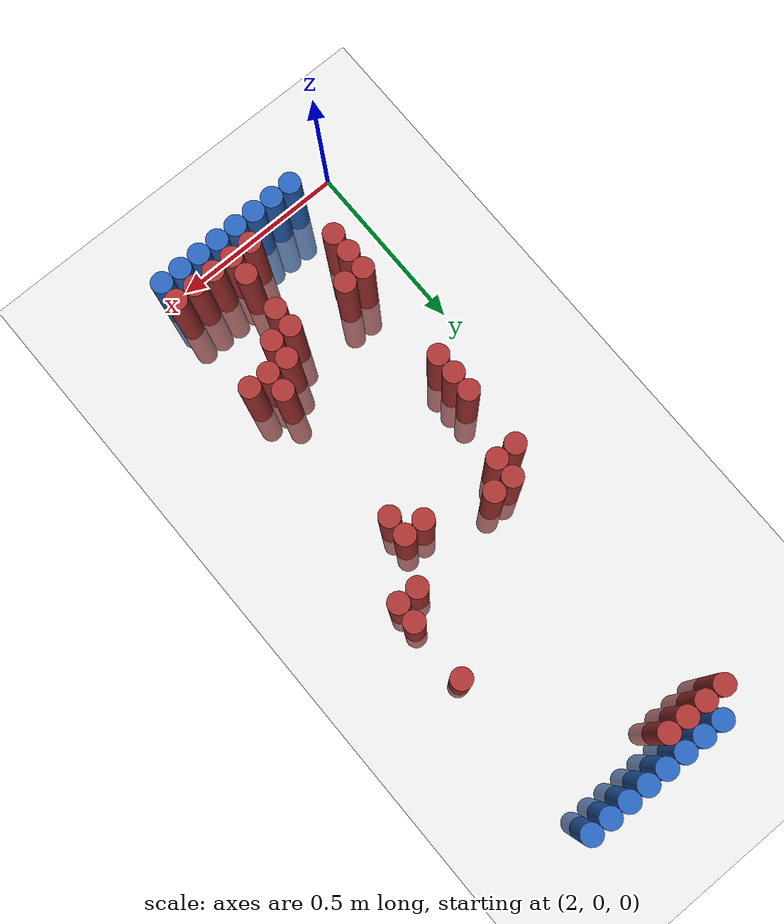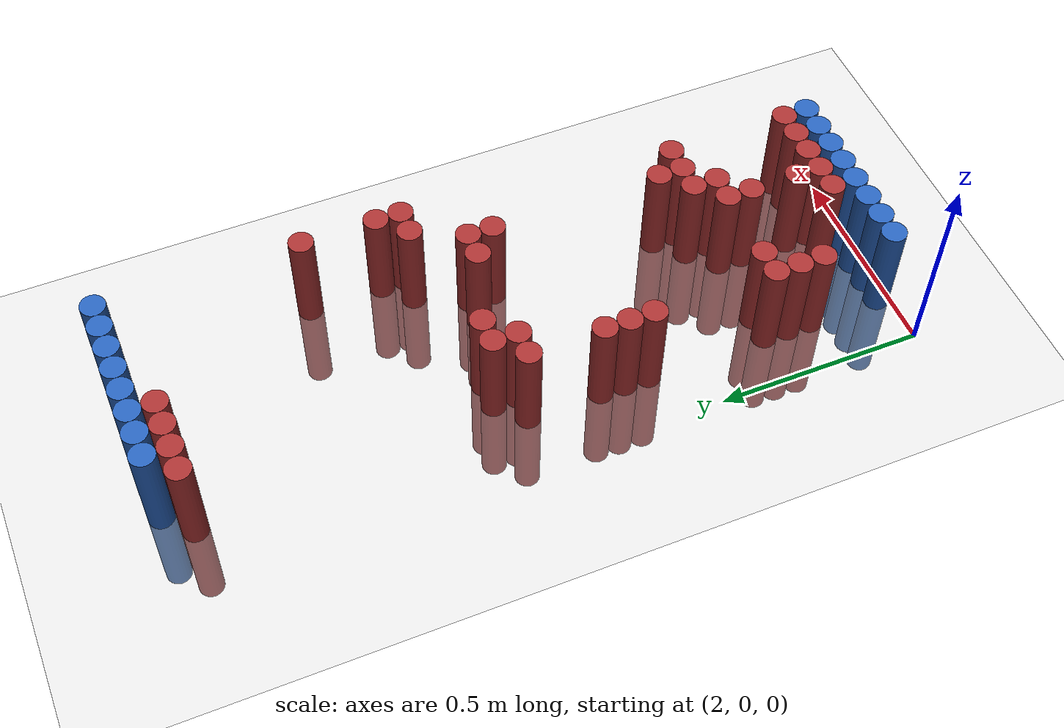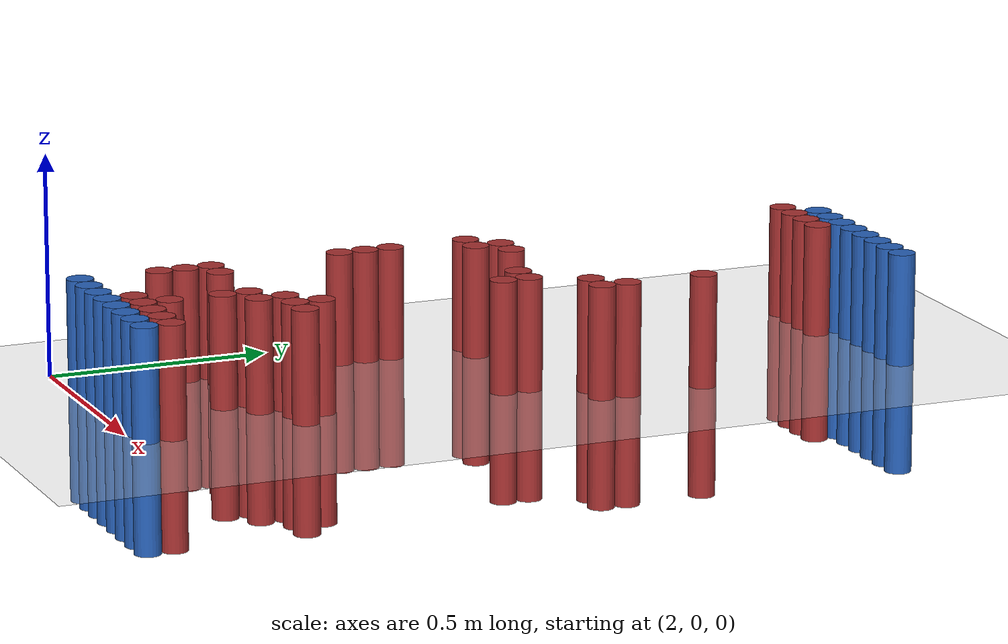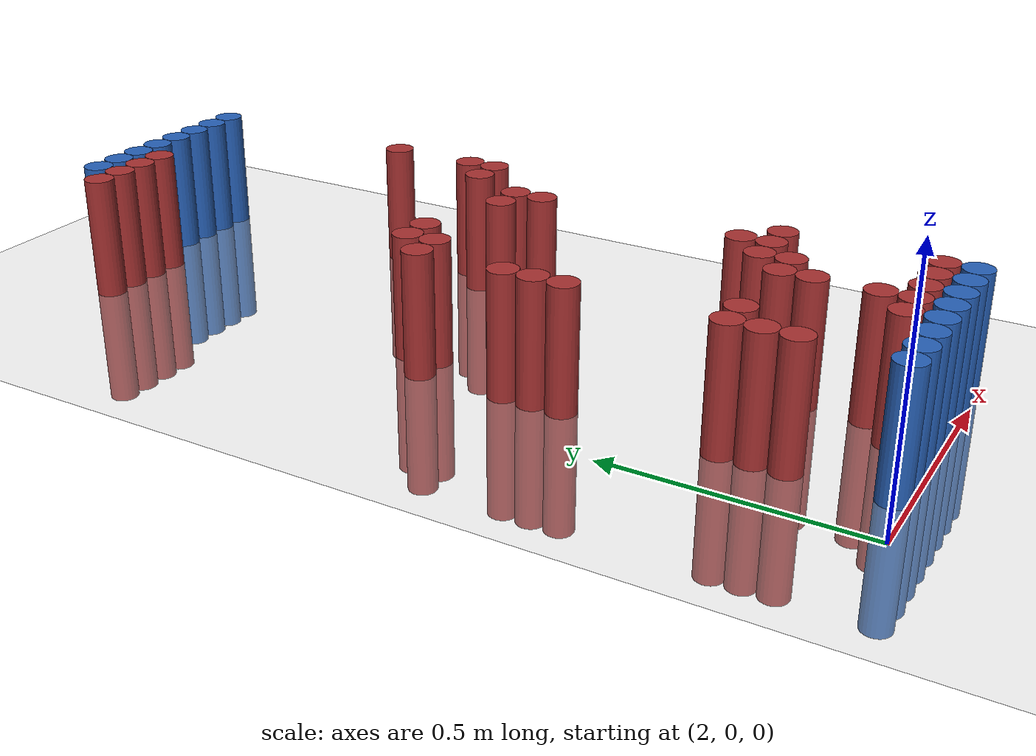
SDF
<sdf version="1.6">
 <world name="default">
  <model name="ground_plane">
   <static>1</static>
   <link name="link">
    <collision name="collision">
     <geometry><plane><normal>0 0 1</normal><size>100 100</size></plane></geometry>
     <surface><friction><ode><mu>100</mu><mu2>50</mu2></ode></friction></surface>
    </collision>
    <visual name="visual">
     <cast_shadows>0</cast_shadows>
     <geometry><plane><normal>0 0 1</normal><size>100 100</size></plane></geometry>
     <material>
      <script><uri>file://media/materials/scripts/gazebo.material</uri><name>Gazebo/Grey</name></script>
     </material>
    </visual>
   </link>
  </model>
  <model name="unit_cylinder_97">
   <static>1</static>
   <pose>2.190000 1.770000 0.000000 0.000000 0.000000 0.000000</pose>
   <link name="link">
    <inertial>
     <mass>1</mass>
     <inertia><ixx>0.145833</ixx><ixy>0</ixy><ixz>0</ixz><iyy>0.145833</iyy><iyz>0</iyz><izz>0.125</izz></inertia>
    </inertial>
    <collision name="collision">
     <geometry><cylinder><radius>0.030000</radius><length>0.5</length></cylinder></geometry>
    </collision>
    <visual name="visual">
     <geometry><cylinder><radius>0.030000</radius><length>0.5</length></cylinder></geometry>
     <material>
      <ambient>0.152000 0.379000 0.720000 1</ambient>
      <diffuse>0.152000 0.379000 0.720000 1</diffuse>
     </material>
     <material>
      <script><name>Gazebo/Grey</name><uri>file://media/materials/scripts/gazebo.material</uri></script>
     </material>
    </visual>
   </link>
  </model>
  <model name="unit_cylinder_98">
   <static>1</static>
   <pose>2.250000 1.770000 0.000000 0.000000 0.000000 0.000000</pose>
   <link name="link">
    <inertial>
     <mass>1</mass>
     <inertia><ixx>0.145833</ixx><ixy>0</ixy><ixz>0</ixz><iyy>0.145833</iyy><iyz>0</iyz><izz>0.125</izz></inertia>
    </inertial>
    <collision name="collision">
     <geometry><cylinder><radius>0.030000</radius><length>0.5</length></cylinder></geometry>
    </collision>
    <visual name="visual">
     <geometry><cylinder><radius>0.030000</radius><length>0.5</length></cylinder></geometry>
     <material>
      <ambient>0.152000 0.379000 0.720000 1</ambient>
      <diffuse>0.152000 0.379000 0.720000 1</diffuse>
     </material>
     <material>
      <script><name>Gazebo/Grey</name><uri>file://media/materials/scripts/gazebo.material</uri></script>
     </material>
    </visual>
   </link>
  </model>
  <model name="unit_cylinder_99">
   <static>1</static>
   <pose>2.310000 1.770000 0.000000 0.000000 0.000000 0.000000</pose>
   <link name="link">
    <inertial>
     <mass>1</mass>
     <inertia><ixx>0.145833</ixx><ixy>0</ixy><ixz>0</ixz><iyy>0.145833</iyy><iyz>0</iyz><izz>0.125</izz></inertia>
    </inertial>
    <collision name="collision">
     <geometry><cylinder><radius>0.030000</radius><length>0.5</length></cylinder></geometry>
    </collision>
    <visual name="visual">
     <geometry><cylinder><radius>0.030000</radius><length>0.5</length></cylinder></geometry>
     <material>
      <ambient>0.152000 0.379000 0.720000 1</ambient>
      <diffuse>0.152000 0.379000 0.720000 1</diffuse>
     </material>
     <material>
      <script><name>Gazebo/Grey</name><uri>file://media/materials/scripts/gazebo.material</uri></script>
     </material>
    </visual>
   </link>
  </model>
  <model name="unit_cylinder_100">
   <static>1</static>
   <pose>2.370000 1.770000 0.000000 0.000000 0.000000 0.000000</pose>
   <link name="link">
    <inertial>
     <mass>1</mass>
     <inertia><ixx>0.145833</ixx><ixy>0</ixy><ixz>0</ixz><iyy>0.145833</iyy><iyz>0</iyz><izz>0.125</izz></inertia>
    </inertial>
    <collision name="collision">
     <geometry><cylinder><radius>0.030000</radius><length>0.5</length></cylinder></geometry>
    </collision>
    <visual name="visual">
     <geometry><cylinder><radius>0.030000</radius><length>0.5</length></cylinder></geometry>
     <material>
      <ambient>0.152000 0.379000 0.720000 1</ambient>
      <diffuse>0.152000 0.379000 0.720000 1</diffuse>
     </material>
     <material>
      <script><name>Gazebo/Grey</name><uri>file://media/materials/scripts/gazebo.material</uri></script>
     </material>
    </visual>
   </link>
  </model>
  <model name="unit_cylinder_101">
   <static>1</static>
   <pose>2.430000 1.770000 0.000000 0.000000 0.000000 0.000000</pose>
   <link name="link">
    <inertial>
     <mass>1</mass>
     <inertia><ixx>0.145833</ixx><ixy>0</ixy><ixz>0</ixz><iyy>0.145833</iyy><iyz>0</iyz><izz>0.125</izz></inertia>
    </inertial>
    <collision name="collision">
     <geometry><cylinder><radius>0.030000</radius><length>0.5</length></cylinder></geometry>
    </collision>
    <visual name="visual">
     <geometry><cylinder><radius>0.030000</radius><length>0.5</length></cylinder></geometry>
     <material>
      <ambient>0.152000 0.379000 0.720000 1</ambient>
      <diffuse>0.152000 0.379000 0.720000 1</diffuse>
     </material>
     <material>
      <script><name>Gazebo/Grey</name><uri>file://media/materials/scripts/gazebo.material</uri></script>
     </material>
    </visual>
   </link>
  </model>
  <model name="unit_cylinder_102">
   <static>1</static>
   <pose>2.490000 1.770000 0.000000 0.000000 0.000000 0.000000</pose>
   <link name="link">
    <inertial>
     <mass>1</mass>
     <inertia><ixx>0.145833</ixx><ixy>0</ixy><ixz>0</ixz><iyy>0.145833</iyy><iyz>0</iyz><izz>0.125</izz></inertia>
    </inertial>
    <collision name="collision">
     <geometry><cylinder><radius>0.030000</radius><length>0.5</length></cylinder></geometry>
    </collision>
    <visual name="visual">
     <geometry><cylinder><radius>0.030000</radius><length>0.5</length></cylinder></geometry>
     <material>
      <ambient>0.152000 0.379000 0.720000 1</ambient>
      <diffuse>0.152000 0.379000 0.720000 1</diffuse>
     </material>
     <material>
      <script><name>Gazebo/Grey</name><uri>file://media/materials/scripts/gazebo.material</uri></script>
     </material>
    </visual>
   </link>
  </model>
  <model name="unit_cylinder_103">
   <static>1</static>
   <pose>2.550000 1.770000 0.000000 0.000000 0.000000 0.000000</pose>
   <link name="link">
    <inertial>
     <mass>1</mass>
     <inertia><ixx>0.145833</ixx><ixy>0</ixy><ixz>0</ixz><iyy>0.145833</iyy><iyz>0</iyz><izz>0.125</izz></inertia>
    </inertial>
    <collision name="collision">
     <geometry><cylinder><radius>0.030000</radius><length>0.5</length></cylinder></geometry>
    </collision>
    <visual name="visual">
     <geometry><cylinder><radius>0.030000</radius><length>0.5</length></cylinder></geometry>
     <material>
      <ambient>0.152000 0.379000 0.720000 1</ambient>
      <diffuse>0.152000 0.379000 0.720000 1</diffuse>
     </material>
     <material>
      <script><name>Gazebo/Grey</name><uri>file://media/materials/scripts/gazebo.material</uri></script>
     </material>
    </visual>
   </link>
  </model>
  <model name="unit_cylinder_104">
   <static>1</static>
   <pose>2.610000 1.770000 0.000000 0.000000 0.000000 0.000000</pose>
   <link name="link">
    <inertial>
     <mass>1</mass>
     <inertia><ixx>0.145833</ixx><ixy>0</ixy><ixz>0</ixz><iyy>0.145833</iyy><iyz>0</iyz><izz>0.125</izz></inertia>
    </inertial>
    <collision name="collision">
     <geometry><cylinder><radius>0.030000</radius><length>0.5</length></cylinder></geometry>
    </collision>
    <visual name="visual">
     <geometry><cylinder><radius>0.030000</radius><length>0.5</length></cylinder></geometry>
     <material>
      <ambient>0.152000 0.379000 0.720000 1</ambient>
      <diffuse>0.152000 0.379000 0.720000 1</diffuse>
     </material>
     <material>
      <script><name>Gazebo/Grey</name><uri>file://media/materials/scripts/gazebo.material</uri></script>
     </material>
    </visual>
   </link>
  </model>
  <model name="unit_cylinder_125">
   <static>1</static>
   <pose>2.130000 1.710000 0.000000 0.000000 0.000000 0.000000</pose>
   <link name="link">
    <inertial>
     <mass>1</mass>
     <inertia><ixx>0.145833</ixx><ixy>0</ixy><ixz>0</ixz><iyy>0.145833</iyy><iyz>0</iyz><izz>0.125</izz></inertia>
    </inertial>
    <collision name="collision">
     <geometry><cylinder><radius>0.030000</radius><length>0.5</length></cylinder></geometry>
    </collision>
    <visual name="visual">
     <geometry><cylinder><radius>0.030000</radius><length>0.5</length></cylinder></geometry>
     <material>
      <ambient>0.648000 0.192000 0.192000 1</ambient>
      <diffuse>0.648000 0.192000 0.192000 1</diffuse>
     </material>
     <material>
      <script><name>Gazebo/Grey</name><uri>file://media/materials/scripts/gazebo.material</uri></script>
     </material>
    </visual>
   </link>
  </model>
  <model name="unit_cylinder_126">
   <static>1</static>
   <pose>2.190000 1.710000 0.000000 0.000000 0.000000 0.000000</pose>
   <link name="link">
    <inertial>
     <mass>1</mass>
     <inertia><ixx>0.145833</ixx><ixy>0</ixy><ixz>0</ixz><iyy>0.145833</iyy><iyz>0</iyz><izz>0.125</izz></inertia>
    </inertial>
    <collision name="collision">
     <geometry><cylinder><radius>0.030000</radius><length>0.5</length></cylinder></geometry>
    </collision>
    <visual name="visual">
     <geometry><cylinder><radius>0.030000</radius><length>0.5</length></cylinder></geometry>
     <material>
      <ambient>0.648000 0.192000 0.192000 1</ambient>
      <diffuse>0.648000 0.192000 0.192000 1</diffuse>
     </material>
     <material>
      <script><name>Gazebo/Grey</name><uri>file://media/materials/scripts/gazebo.material</uri></script>
     </material>
    </visual>
   </link>
  </model>
  <model name="unit_cylinder_127">
   <static>1</static>
   <pose>2.250000 1.710000 0.000000 0.000000 0.000000 0.000000</pose>
   <link name="link">
    <inertial>
     <mass>1</mass>
     <inertia><ixx>0.145833</ixx><ixy>0</ixy><ixz>0</ixz><iyy>0.145833</iyy><iyz>0</iyz><izz>0.125</izz></inertia>
    </inertial>
    <collision name="collision">
     <geometry><cylinder><radius>0.030000</radius><length>0.5</length></cylinder></geometry>
    </collision>
    <visual name="visual">
     <geometry><cylinder><radius>0.030000</radius><length>0.5</length></cylinder></geometry>
     <material>
      <ambient>0.648000 0.192000 0.192000 1</ambient>
      <diffuse>0.648000 0.192000 0.192000 1</diffuse>
     </material>
     <material>
      <script><name>Gazebo/Grey</name><uri>file://media/materials/scripts/gazebo.material</uri></script>
     </material>
    </visual>
   </link>
  </model>
  <model name="unit_cylinder_128">
   <static>1</static>
   <pose>2.310000 1.710000 0.000000 0.000000 0.000000 0.000000</pose>
   <link name="link">
    <inertial>
     <mass>1</mass>
     <inertia><ixx>0.145833</ixx><ixy>0</ixy><ixz>0</ixz><iyy>0.145833</iyy><iyz>0</iyz><izz>0.125</izz></inertia>
    </inertial>
    <collision name="collision">
     <geometry><cylinder><radius>0.030000</radius><length>0.5</length></cylinder></geometry>
    </collision>
    <visual name="visual">
     <geometry><cylinder><radius>0.030000</radius><length>0.5</length></cylinder></geometry>
     <material>
      <ambient>0.648000 0.192000 0.192000 1</ambient>
      <diffuse>0.648000 0.192000 0.192000 1</diffuse>
     </material>
     <material>
      <script><name>Gazebo/Grey</name><uri>file://media/materials/scripts/gazebo.material</uri></script>
     </material>
    </visual>
   </link>
  </model>
  <model name="unit_cylinder_161">
   <static>1</static>
   <pose>2.610000 1.290000 0.000000 0.000000 0.000000 0.000000</pose>
   <link name="link">
    <inertial>
     <mass>1</mass>
     <inertia><ixx>0.145833</ixx><ixy>0</ixy><ixz>0</ixz><iyy>0.145833</iyy><iyz>0</iyz><izz>0.125</izz></inertia>
    </inertial>
    <collision name="collision">
     <geometry><cylinder><radius>0.030000</radius><length>0.5</length></cylinder></geometry>
    </collision>
    <visual name="visual">
     <geometry><cylinder><radius>0.030000</radius><length>0.5</length></cylinder></geometry>
     <material>
      <ambient>0.648000 0.192000 0.192000 1</ambient>
      <diffuse>0.648000 0.192000 0.192000 1</diffuse>
     </material>
     <material>
      <script><name>Gazebo/Grey</name><uri>file://media/materials/scripts/gazebo.material</uri></script>
     </material>
    </visual>
   </link>
  </model>
  <model name="unit_cylinder_166">
   <static>1</static>
   <pose>2.610000 1.110000 0.000000 0.000000 0.000000 0.000000</pose>
   <link name="link">
    <inertial>
     <mass>1</mass>
     <inertia><ixx>0.145833</ixx><ixy>0</ixy><ixz>0</ixz><iyy>0.145833</iyy><iyz>0</iyz><izz>0.125</izz></inertia>
    </inertial>
    <collision name="collision">
     <geometry><cylinder><radius>0.030000</radius><length>0.5</length></cylinder></geometry>
    </collision>
    <visual name="visual">
     <geometry><cylinder><radius>0.030000</radius><length>0.5</length></cylinder></geometry>
     <material>
      <ambient>0.648000 0.192000 0.192000 1</ambient>
      <diffuse>0.648000 0.192000 0.192000 1</diffuse>
     </material>
     <material>
      <script><name>Gazebo/Grey</name><uri>file://media/materials/scripts/gazebo.material</uri></script>
     </material>
    </visual>
   </link>
  </model>
  <model name="unit_cylinder_168">
   <static>1</static>
   <pose>2.550000 1.050000 0.000000 0.000000 0.000000 0.000000</pose>
   <link name="link">
    <inertial>
     <mass>1</mass>
     <inertia><ixx>0.145833</ixx><ixy>0</ixy><ixz>0</ixz><iyy>0.145833</iyy><iyz>0</iyz><izz>0.125</izz></inertia>
    </inertial>
    <collision name="collision">
     <geometry><cylinder><radius>0.030000</radius><length>0.5</length></cylinder></geometry>
    </collision>
    <visual name="visual">
     <geometry><cylinder><radius>0.030000</radius><length>0.5</length></cylinder></geometry>
     <material>
      <ambient>0.648000 0.192000 0.192000 1</ambient>
      <diffuse>0.648000 0.192000 0.192000 1</diffuse>
     </material>
     <material>
      <script><name>Gazebo/Grey</name><uri>file://media/materials/scripts/gazebo.material</uri></script>
     </material>
    </visual>
   </link>
  </model>
  <model name="unit_cylinder_169">
   <static>1</static>
   <pose>2.610000 1.050000 0.000000 0.000000 0.000000 0.000000</pose>
   <link name="link">
    <inertial>
     <mass>1</mass>
     <inertia><ixx>0.145833</ixx><ixy>0</ixy><ixz>0</ixz><iyy>0.145833</iyy><iyz>0</iyz><izz>0.125</izz></inertia>
    </inertial>
    <collision name="collision">
     <geometry><cylinder><radius>0.030000</radius><length>0.5</length></cylinder></geometry>
    </collision>
    <visual name="visual">
     <geometry><cylinder><radius>0.030000</radius><length>0.5</length></cylinder></geometry>
     <material>
      <ambient>0.648000 0.192000 0.192000 1</ambient>
      <diffuse>0.648000 0.192000 0.192000 1</diffuse>
     </material>
     <material>
      <script><name>Gazebo/Grey</name><uri>file://media/materials/scripts/gazebo.material</uri></script>
     </material>
    </visual>
   </link>
  </model>
  <model name="unit_cylinder_170">
   <static>1</static>
   <pose>2.190000 0.990000 0.000000 0.000000 0.000000 0.000000</pose>
   <link name="link">
    <inertial>
     <mass>1</mass>
     <inertia><ixx>0.145833</ixx><ixy>0</ixy><ixz>0</ixz><iyy>0.145833</iyy><iyz>0</iyz><izz>0.125</izz></inertia>
    </inertial>
    <collision name="collision">
     <geometry><cylinder><radius>0.030000</radius><length>0.5</length></cylinder></geometry>
    </collision>
    <visual name="visual">
     <geometry><cylinder><radius>0.030000</radius><length>0.5</length></cylinder></geometry>
     <material>
      <ambient>0.648000 0.192000 0.192000 1</ambient>
      <diffuse>0.648000 0.192000 0.192000 1</diffuse>
     </material>
     <material>
      <script><name>Gazebo/Grey</name><uri>file://media/materials/scripts/gazebo.material</uri></script>
     </material>
    </visual>
   </link>
  </model>
  <model name="unit_cylinder_171">
   <static>1</static>
   <pose>2.250000 0.990000 0.000000 0.000000 0.000000 0.000000</pose>
   <link name="link">
    <inertial>
     <mass>1</mass>
     <inertia><ixx>0.145833</ixx><ixy>0</ixy><ixz>0</ixz><iyy>0.145833</iyy><iyz>0</iyz><izz>0.125</izz></inertia>
    </inertial>
    <collision name="collision">
     <geometry><cylinder><radius>0.030000</radius><length>0.5</length></cylinder></geometry>
    </collision>
    <visual name="visual">
     <geometry><cylinder><radius>0.030000</radius><length>0.5</length></cylinder></geometry>
     <material>
      <ambient>0.648000 0.192000 0.192000 1</ambient>
      <diffuse>0.648000 0.192000 0.192000 1</diffuse>
     </material>
     <material>
      <script><name>Gazebo/Grey</name><uri>file://media/materials/scripts/gazebo.material</uri></script>
     </material>
    </visual>
   </link>
  </model>
  <model name="unit_cylinder_172">
   <static>1</static>
   <pose>2.130000 0.930000 0.000000 0.000000 0.000000 0.000000</pose>
   <link name="link">
    <inertial>
     <mass>1</mass>
     <inertia><ixx>0.145833</ixx><ixy>0</ixy><ixz>0</ixz><iyy>0.145833</iyy><iyz>0</iyz><izz>0.125</izz></inertia>
    </inertial>
    <collision name="collision">
     <geometry><cylinder><radius>0.030000</radius><length>0.5</length></cylinder></geometry>
    </collision>
    <visual name="visual">
     <geometry><cylinder><radius>0.030000</radius><length>0.5</length></cylinder></geometry>
     <material>
      <ambient>0.648000 0.192000 0.192000 1</ambient>
      <diffuse>0.648000 0.192000 0.192000 1</diffuse>
     </material>
     <material>
      <script><name>Gazebo/Grey</name><uri>file://media/materials/scripts/gazebo.material</uri></script>
     </material>
    </visual>
   </link>
  </model>
  <model name="unit_cylinder_173">
   <static>1</static>
   <pose>2.190000 0.930000 0.000000 0.000000 0.000000 0.000000</pose>
   <link name="link">
    <inertial>
     <mass>1</mass>
     <inertia><ixx>0.145833</ixx><ixy>0</ixy><ixz>0</ixz><iyy>0.145833</iyy><iyz>0</iyz><izz>0.125</izz></inertia>
    </inertial>
    <collision name="collision">
     <geometry><cylinder><radius>0.030000</radius><length>0.5</length></cylinder></geometry>
    </collision>
    <visual name="visual">
     <geometry><cylinder><radius>0.030000</radius><length>0.5</length></cylinder></geometry>
     <material>
      <ambient>0.648000 0.192000 0.192000 1</ambient>
      <diffuse>0.648000 0.192000 0.192000 1</diffuse>
     </material>
     <material>
      <script><name>Gazebo/Grey</name><uri>file://media/materials/scripts/gazebo.material</uri></script>
     </material>
    </visual>
   </link>
  </model>
  <model name="unit_cylinder_174">
   <static>1</static>
   <pose>2.430000 0.930000 0.000000 0.000000 0.000000 0.000000</pose>
   <link name="link">
    <inertial>
     <mass>1</mass>
     <inertia><ixx>0.145833</ixx><ixy>0</ixy><ixz>0</ixz><iyy>0.145833</iyy><iyz>0</iyz><izz>0.125</izz></inertia>
    </inertial>
    <collision name="collision">
     <geometry><cylinder><radius>0.030000</radius><length>0.5</length></cylinder></geometry>
    </collision>
    <visual name="visual">
     <geometry><cylinder><radius>0.030000</radius><length>0.5</length></cylinder></geometry>
     <material>
      <ambient>0.648000 0.192000 0.192000 1</ambient>
      <diffuse>0.648000 0.192000 0.192000 1</diffuse>
     </material>
     <material>
      <script><name>Gazebo/Grey</name><uri>file://media/materials/scripts/gazebo.material</uri></script>
     </material>
    </visual>
   </link>
  </model>
  <model name="unit_cylinder_175">
   <static>1</static>
   <pose>2.490000 0.930000 0.000000 0.000000 0.000000 0.000000</pose>
   <link name="link">
    <inertial>
     <mass>1</mass>
     <inertia><ixx>0.145833</ixx><ixy>0</ixy><ixz>0</ixz><iyy>0.145833</iyy><iyz>0</iyz><izz>0.125</izz></inertia>
    </inertial>
    <collision name="collision">
     <geometry><cylinder><radius>0.030000</radius><length>0.5</length></cylinder></geometry>
    </collision>
    <visual name="visual">
     <geometry><cylinder><radius>0.030000</radius><length>0.5</length></cylinder></geometry>
     <material>
      <ambient>0.648000 0.192000 0.192000 1</ambient>
      <diffuse>0.648000 0.192000 0.192000 1</diffuse>
     </material>
     <material>
      <script><name>Gazebo/Grey</name><uri>file://media/materials/scripts/gazebo.material</uri></script>
     </material>
    </visual>
   </link>
  </model>
  <model name="unit_cylinder_179">
   <static>1</static>
   <pose>2.490000 0.870000 0.000000 0.000000 0.000000 0.000000</pose>
   <link name="link">
    <inertial>
     <mass>1</mass>
     <inertia><ixx>0.145833</ixx><ixy>0</ixy><ixz>0</ixz><iyy>0.145833</iyy><iyz>0</iyz><izz>0.125</izz></inertia>
    </inertial>
    <collision name="collision">
     <geometry><cylinder><radius>0.030000</radius><length>0.5</length></cylinder></geometry>
    </collision>
    <visual name="visual">
     <geometry><cylinder><radius>0.030000</radius><length>0.5</length></cylinder></geometry>
     <material>
      <ambient>0.648000 0.192000 0.192000 1</ambient>
      <diffuse>0.648000 0.192000 0.192000 1</diffuse>
     </material>
     <material>
      <script><name>Gazebo/Grey</name><uri>file://media/materials/scripts/gazebo.material</uri></script>
     </material>
    </visual>
   </link>
  </model>
  <model name="unit_cylinder_188">
   <static>1</static>
   <pose>2.130000 0.750000 0.000000 0.000000 0.000000 0.000000</pose>
   <link name="link">
    <inertial>
     <mass>1</mass>
     <inertia><ixx>0.145833</ixx><ixy>0</ixy><ixz>0</ixz><iyy>0.145833</iyy><iyz>0</iyz><izz>0.125</izz></inertia>
    </inertial>
    <collision name="collision">
     <geometry><cylinder><radius>0.030000</radius><length>0.5</length></cylinder></geometry>
    </collision>
    <visual name="visual">
     <geometry><cylinder><radius>0.030000</radius><length>0.5</length></cylinder></geometry>
     <material>
      <ambient>0.648000 0.192000 0.192000 1</ambient>
      <diffuse>0.648000 0.192000 0.192000 1</diffuse>
     </material>
     <material>
      <script><name>Gazebo/Grey</name><uri>file://media/materials/scripts/gazebo.material</uri></script>
     </material>
    </visual>
   </link>
  </model>
  <model name="unit_cylinder_196">
   <static>1</static>
   <pose>2.130000 0.690000 0.000000 0.000000 0.000000 0.000000</pose>
   <link name="link">
    <inertial>
     <mass>1</mass>
     <inertia><ixx>0.145833</ixx><ixy>0</ixy><ixz>0</ixz><iyy>0.145833</iyy><iyz>0</iyz><izz>0.125</izz></inertia>
    </inertial>
    <collision name="collision">
     <geometry><cylinder><radius>0.030000</radius><length>0.5</length></cylinder></geometry>
    </collision>
    <visual name="visual">
     <geometry><cylinder><radius>0.030000</radius><length>0.5</length></cylinder></geometry>
     <material>
      <ambient>0.648000 0.192000 0.192000 1</ambient>
      <diffuse>0.648000 0.192000 0.192000 1</diffuse>
     </material>
     <material>
      <script><name>Gazebo/Grey</name><uri>file://media/materials/scripts/gazebo.material</uri></script>
     </material>
    </visual>
   </link>
  </model>
  <model name="unit_cylinder_200">
   <static>1</static>
   <pose>2.130000 0.630000 0.000000 0.000000 0.000000 0.000000</pose>
   <link name="link">
    <inertial>
     <mass>1</mass>
     <inertia><ixx>0.145833</ixx><ixy>0</ixy><ixz>0</ixz><iyy>0.145833</iyy><iyz>0</iyz><izz>0.125</izz></inertia>
    </inertial>
    <collision name="collision">
     <geometry><cylinder><radius>0.030000</radius><length>0.5</length></cylinder></geometry>
    </collision>
    <visual name="visual">
     <geometry><cylinder><radius>0.030000</radius><length>0.5</length></cylinder></geometry>
     <material>
      <ambient>0.648000 0.192000 0.192000 1</ambient>
      <diffuse>0.648000 0.192000 0.192000 1</diffuse>
     </material>
     <material>
      <script><name>Gazebo/Grey</name><uri>file://media/materials/scripts/gazebo.material</uri></script>
     </material>
    </visual>
   </link>
  </model>
  <model name="unit_cylinder_209">
   <static>1</static>
   <pose>2.490000 0.450000 0.000000 0.000000 0.000000 0.000000</pose>
   <link name="link">
    <inertial>
     <mass>1</mass>
     <inertia><ixx>0.145833</ixx><ixy>0</ixy><ixz>0</ixz><iyy>0.145833</iyy><iyz>0</iyz><izz>0.125</izz></inertia>
    </inertial>
    <collision name="collision">
     <geometry><cylinder><radius>0.030000</radius><length>0.5</length></cylinder></geometry>
    </collision>
    <visual name="visual">
     <geometry><cylinder><radius>0.030000</radius><length>0.5</length></cylinder></geometry>
     <material>
      <ambient>0.648000 0.192000 0.192000 1</ambient>
      <diffuse>0.648000 0.192000 0.192000 1</diffuse>
     </material>
     <material>
      <script><name>Gazebo/Grey</name><uri>file://media/materials/scripts/gazebo.material</uri></script>
     </material>
    </visual>
   </link>
  </model>
  <model name="unit_cylinder_215">
   <static>1</static>
   <pose>2.430000 0.390000 0.000000 0.000000 0.000000 0.000000</pose>
   <link name="link">
    <inertial>
     <mass>1</mass>
     <inertia><ixx>0.145833</ixx><ixy>0</ixy><ixz>0</ixz><iyy>0.145833</iyy><iyz>0</iyz><izz>0.125</izz></inertia>
    </inertial>
    <collision name="collision">
     <geometry><cylinder><radius>0.030000</radius><length>0.5</length></cylinder></geometry>
    </collision>
    <visual name="visual">
     <geometry><cylinder><radius>0.030000</radius><length>0.5</length></cylinder></geometry>
     <material>
      <ambient>0.648000 0.192000 0.192000 1</ambient>
      <diffuse>0.648000 0.192000 0.192000 1</diffuse>
     </material>
     <material>
      <script><name>Gazebo/Grey</name><uri>file://media/materials/scripts/gazebo.material</uri></script>
     </material>
    </visual>
   </link>
  </model>
  <model name="unit_cylinder_216">
   <static>1</static>
   <pose>2.490000 0.390000 0.000000 0.000000 0.000000 0.000000</pose>
   <link name="link">
    <inertial>
     <mass>1</mass>
     <inertia><ixx>0.145833</ixx><ixy>0</ixy><ixz>0</ixz><iyy>0.145833</iyy><iyz>0</iyz><izz>0.125</izz></inertia>
    </inertial>
    <collision name="collision">
     <geometry><cylinder><radius>0.030000</radius><length>0.5</length></cylinder></geometry>
    </collision>
    <visual name="visual">
     <geometry><cylinder><radius>0.030000</radius><length>0.5</length></cylinder></geometry>
     <material>
      <ambient>0.648000 0.192000 0.192000 1</ambient>
      <diffuse>0.648000 0.192000 0.192000 1</diffuse>
     </material>
     <material>
      <script><name>Gazebo/Grey</name><uri>file://media/materials/scripts/gazebo.material</uri></script>
     </material>
    </visual>
   </link>
  </model>
  <model name="unit_cylinder_217">
   <static>1</static>
   <pose>2.550000 0.390000 0.000000 0.000000 0.000000 0.000000</pose>
   <link name="link">
    <inertial>
     <mass>1</mass>
     <inertia><ixx>0.145833</ixx><ixy>0</ixy><ixz>0</ixz><iyy>0.145833</iyy><iyz>0</iyz><izz>0.125</izz></inertia>
    </inertial>
    <collision name="collision">
     <geometry><cylinder><radius>0.030000</radius><length>0.5</length></cylinder></geometry>
    </collision>
    <visual name="visual">
     <geometry><cylinder><radius>0.030000</radius><length>0.5</length></cylinder></geometry>
     <material>
      <ambient>0.648000 0.192000 0.192000 1</ambient>
      <diffuse>0.648000 0.192000 0.192000 1</diffuse>
     </material>
     <material>
      <script><name>Gazebo/Grey</name><uri>file://media/materials/scripts/gazebo.material</uri></script>
     </material>
    </visual>
   </link>
  </model>
  <model name="unit_cylinder_225">
   <static>1</static>
   <pose>2.130000 0.330000 0.000000 0.000000 0.000000 0.000000</pose>
   <link name="link">
    <inertial>
     <mass>1</mass>
     <inertia><ixx>0.145833</ixx><ixy>0</ixy><ixz>0</ixz><iyy>0.145833</iyy><iyz>0</iyz><izz>0.125</izz></inertia>
    </inertial>
    <collision name="collision">
     <geometry><cylinder><radius>0.030000</radius><length>0.5</length></cylinder></geometry>
    </collision>
    <visual name="visual">
     <geometry><cylinder><radius>0.030000</radius><length>0.5</length></cylinder></geometry>
     <material>
      <ambient>0.648000 0.192000 0.192000 1</ambient>
      <diffuse>0.648000 0.192000 0.192000 1</diffuse>
     </material>
     <material>
      <script><name>Gazebo/Grey</name><uri>file://media/materials/scripts/gazebo.material</uri></script>
     </material>
    </visual>
   </link>
  </model>
  <model name="unit_cylinder_226">
   <static>1</static>
   <pose>2.190000 0.330000 0.000000 0.000000 0.000000 0.000000</pose>
   <link name="link">
    <inertial>
     <mass>1</mass>
     <inertia><ixx>0.145833</ixx><ixy>0</ixy><ixz>0</ixz><iyy>0.145833</iyy><iyz>0</iyz><izz>0.125</izz></inertia>
    </inertial>
    <collision name="collision">
     <geometry><cylinder><radius>0.030000</radius><length>0.5</length></cylinder></geometry>
    </collision>
    <visual name="visual">
     <geometry><cylinder><radius>0.030000</radius><length>0.5</length></cylinder></geometry>
     <material>
      <ambient>0.648000 0.192000 0.192000 1</ambient>
      <diffuse>0.648000 0.192000 0.192000 1</diffuse>
     </material>
     <material>
      <script><name>Gazebo/Grey</name><uri>file://media/materials/scripts/gazebo.material</uri></script>
     </material>
    </visual>
   </link>
  </model>
  <model name="unit_cylinder_227">
   <static>1</static>
   <pose>2.370000 0.330000 0.000000 0.000000 0.000000 0.000000</pose>
   <link name="link">
    <inertial>
     <mass>1</mass>
     <inertia><ixx>0.145833</ixx><ixy>0</ixy><ixz>0</ixz><iyy>0.145833</iyy><iyz>0</iyz><izz>0.125</izz></inertia>
    </inertial>
    <collision name="collision">
     <geometry><cylinder><radius>0.030000</radius><length>0.5</length></cylinder></geometry>
    </collision>
    <visual name="visual">
     <geometry><cylinder><radius>0.030000</radius><length>0.5</length></cylinder></geometry>
     <material>
      <ambient>0.648000 0.192000 0.192000 1</ambient>
      <diffuse>0.648000 0.192000 0.192000 1</diffuse>
     </material>
     <material>
      <script><name>Gazebo/Grey</name><uri>file://media/materials/scripts/gazebo.material</uri></script>
     </material>
    </visual>
   </link>
  </model>
  <model name="unit_cylinder_228">
   <static>1</static>
   <pose>2.430000 0.330000 0.000000 0.000000 0.000000 0.000000</pose>
   <link name="link">
    <inertial>
     <mass>1</mass>
     <inertia><ixx>0.145833</ixx><ixy>0</ixy><ixz>0</ixz><iyy>0.145833</iyy><iyz>0</iyz><izz>0.125</izz></inertia>
    </inertial>
    <collision name="collision">
     <geometry><cylinder><radius>0.030000</radius><length>0.5</length></cylinder></geometry>
    </collision>
    <visual name="visual">
     <geometry><cylinder><radius>0.030000</radius><length>0.5</length></cylinder></geometry>
     <material>
      <ambient>0.648000 0.192000 0.192000 1</ambient>
      <diffuse>0.648000 0.192000 0.192000 1</diffuse>
     </material>
     <material>
      <script><name>Gazebo/Grey</name><uri>file://media/materials/scripts/gazebo.material</uri></script>
     </material>
    </visual>
   </link>
  </model>
  <model name="unit_cylinder_233">
   <static>1</static>
   <pose>2.130000 0.270000 0.000000 0.000000 0.000000 0.000000</pose>
   <link name="link">
    <inertial>
     <mass>1</mass>
     <inertia><ixx>0.145833</ixx><ixy>0</ixy><ixz>0</ixz><iyy>0.145833</iyy><iyz>0</iyz><izz>0.125</izz></inertia>
    </inertial>
    <collision name="collision">
     <geometry><cylinder><radius>0.030000</radius><length>0.5</length></cylinder></geometry>
    </collision>
    <visual name="visual">
     <geometry><cylinder><radius>0.030000</radius><length>0.5</length></cylinder></geometry>
     <material>
      <ambient>0.648000 0.192000 0.192000 1</ambient>
      <diffuse>0.648000 0.192000 0.192000 1</diffuse>
     </material>
     <material>
      <script><name>Gazebo/Grey</name><uri>file://media/materials/scripts/gazebo.material</uri></script>
     </material>
    </visual>
   </link>
  </model>
  <model name="unit_cylinder_234">
   <static>1</static>
   <pose>2.370000 0.270000 0.000000 0.000000 0.000000 0.000000</pose>
   <link name="link">
    <inertial>
     <mass>1</mass>
     <inertia><ixx>0.145833</ixx><ixy>0</ixy><ixz>0</ixz><iyy>0.145833</iyy><iyz>0</iyz><izz>0.125</izz></inertia>
    </inertial>
    <collision name="collision">
     <geometry><cylinder><radius>0.030000</radius><length>0.5</length></cylinder></geometry>
    </collision>
    <visual name="visual">
     <geometry><cylinder><radius>0.030000</radius><length>0.5</length></cylinder></geometry>
     <material>
      <ambient>0.648000 0.192000 0.192000 1</ambient>
      <diffuse>0.648000 0.192000 0.192000 1</diffuse>
     </material>
     <material>
      <script><name>Gazebo/Grey</name><uri>file://media/materials/scripts/gazebo.material</uri></script>
     </material>
    </visual>
   </link>
  </model>
  <model name="unit_cylinder_239">
   <static>1</static>
   <pose>2.130000 0.210000 0.000000 0.000000 0.000000 0.000000</pose>
   <link name="link">
    <inertial>
     <mass>1</mass>
     <inertia><ixx>0.145833</ixx><ixy>0</ixy><ixz>0</ixz><iyy>0.145833</iyy><iyz>0</iyz><izz>0.125</izz></inertia>
    </inertial>
    <collision name="collision">
     <geometry><cylinder><radius>0.030000</radius><length>0.5</length></cylinder></geometry>
    </collision>
    <visual name="visual">
     <geometry><cylinder><radius>0.030000</radius><length>0.5</length></cylinder></geometry>
     <material>
      <ambient>0.648000 0.192000 0.192000 1</ambient>
      <diffuse>0.648000 0.192000 0.192000 1</diffuse>
     </material>
     <material>
      <script><name>Gazebo/Grey</name><uri>file://media/materials/scripts/gazebo.material</uri></script>
     </material>
    </visual>
   </link>
  </model>
  <model name="unit_cylinder_243">
   <static>1</static>
   <pose>2.370000 0.150000 0.000000 0.000000 0.000000 0.000000</pose>
   <link name="link">
    <inertial>
     <mass>1</mass>
     <inertia><ixx>0.145833</ixx><ixy>0</ixy><ixz>0</ixz><iyy>0.145833</iyy><iyz>0</iyz><izz>0.125</izz></inertia>
    </inertial>
    <collision name="collision">
     <geometry><cylinder><radius>0.030000</radius><length>0.5</length></cylinder></geometry>
    </collision>
    <visual name="visual">
     <geometry><cylinder><radius>0.030000</radius><length>0.5</length></cylinder></geometry>
     <material>
      <ambient>0.648000 0.192000 0.192000 1</ambient>
      <diffuse>0.648000 0.192000 0.192000 1</diffuse>
     </material>
     <material>
      <script><name>Gazebo/Grey</name><uri>file://media/materials/scripts/gazebo.material</uri></script>
     </material>
    </visual>
   </link>
  </model>
  <model name="unit_cylinder_251">
   <static>1</static>
   <pose>2.310000 0.090000 0.000000 0.000000 0.000000 0.000000</pose>
   <link name="link">
    <inertial>
     <mass>1</mass>
     <inertia><ixx>0.145833</ixx><ixy>0</ixy><ixz>0</ixz><iyy>0.145833</iyy><iyz>0</iyz><izz>0.125</izz></inertia>
    </inertial>
    <collision name="collision">
     <geometry><cylinder><radius>0.030000</radius><length>0.5</length></cylinder></geometry>
    </collision>
    <visual name="visual">
     <geometry><cylinder><radius>0.030000</radius><length>0.5</length></cylinder></geometry>
     <material>
      <ambient>0.648000 0.192000 0.192000 1</ambient>
      <diffuse>0.648000 0.192000 0.192000 1</diffuse>
     </material>
     <material>
      <script><name>Gazebo/Grey</name><uri>file://media/materials/scripts/gazebo.material</uri></script>
     </material>
    </visual>
   </link>
  </model>
  <model name="unit_cylinder_252">
   <static>1</static>
   <pose>2.370000 0.090000 0.000000 0.000000 0.000000 0.000000</pose>
   <link name="link">
    <inertial>
     <mass>1</mass>
     <inertia><ixx>0.145833</ixx><ixy>0</ixy><ixz>0</ixz><iyy>0.145833</iyy><iyz>0</iyz><izz>0.125</izz></inertia>
    </inertial>
    <collision name="collision">
     <geometry><cylinder><radius>0.030000</radius><length>0.5</length></cylinder></geometry>
    </collision>
    <visual name="visual">
     <geometry><cylinder><radius>0.030000</radius><length>0.5</length></cylinder></geometry>
     <material>
      <ambient>0.648000 0.192000 0.192000 1</ambient>
      <diffuse>0.648000 0.192000 0.192000 1</diffuse>
     </material>
     <material>
      <script><name>Gazebo/Grey</name><uri>file://media/materials/scripts/gazebo.material</uri></script>
     </material>
    </visual>
   </link>
  </model>
  <model name="unit_cylinder_253">
   <static>1</static>
   <pose>2.430000 0.090000 0.000000 0.000000 0.000000 0.000000</pose>
   <link name="link">
    <inertial>
     <mass>1</mass>
     <inertia><ixx>0.145833</ixx><ixy>0</ixy><ixz>0</ixz><iyy>0.145833</iyy><iyz>0</iyz><izz>0.125</izz></inertia>
    </inertial>
    <collision name="collision">
     <geometry><cylinder><radius>0.030000</radius><length>0.5</length></cylinder></geometry>
    </collision>
    <visual name="visual">
     <geometry><cylinder><radius>0.030000</radius><length>0.5</length></cylinder></geometry>
     <material>
      <ambient>0.648000 0.192000 0.192000 1</ambient>
      <diffuse>0.648000 0.192000 0.192000 1</diffuse>
     </material>
     <material>
      <script><name>Gazebo/Grey</name><uri>file://media/materials/scripts/gazebo.material</uri></script>
     </material>
    </visual>
   </link>
  </model>
  <model name="unit_cylinder_254">
   <static>1</static>
   <pose>2.490000 0.090000 0.000000 0.000000 0.000000 0.000000</pose>
   <link name="link">
    <inertial>
     <mass>1</mass>
     <inertia><ixx>0.145833</ixx><ixy>0</ixy><ixz>0</ixz><iyy>0.145833</iyy><iyz>0</iyz><izz>0.125</izz></inertia>
    </inertial>
    <collision name="collision">
     <geometry><cylinder><radius>0.030000</radius><length>0.5</length></cylinder></geometry>
    </collision>
    <visual name="visual">
     <geometry><cylinder><radius>0.030000</radius><length>0.5</length></cylinder></geometry>
     <material>
      <ambient>0.648000 0.192000 0.192000 1</ambient>
      <diffuse>0.648000 0.192000 0.192000 1</diffuse>
     </material>
     <material>
      <script><name>Gazebo/Grey</name><uri>file://media/materials/scripts/gazebo.material</uri></script>
     </material>
    </visual>
   </link>
  </model>
  <model name="unit_cylinder_255">
   <static>1</static>
   <pose>2.550000 0.090000 0.000000 0.000000 0.000000 0.000000</pose>
   <link name="link">
    <inertial>
     <mass>1</mass>
     <inertia><ixx>0.145833</ixx><ixy>0</ixy><ixz>0</ixz><iyy>0.145833</iyy><iyz>0</iyz><izz>0.125</izz></inertia>
    </inertial>
    <collision name="collision">
     <geometry><cylinder><radius>0.030000</radius><length>0.5</length></cylinder></geometry>
    </collision>
    <visual name="visual">
     <geometry><cylinder><radius>0.030000</radius><length>0.5</length></cylinder></geometry>
     <material>
      <ambient>0.648000 0.192000 0.192000 1</ambient>
      <diffuse>0.648000 0.192000 0.192000 1</diffuse>
     </material>
     <material>
      <script><name>Gazebo/Grey</name><uri>file://media/materials/scripts/gazebo.material</uri></script>
     </material>
    </visual>
   </link>
  </model>
  <model name="unit_cylinder_274">
   <static>1</static>
   <pose>2.130000 0.030000 0.000000 0.000000 0.000000 0.000000</pose>
   <link name="link">
    <inertial>
     <mass>1</mass>
     <inertia><ixx>0.145833</ixx><ixy>0</ixy><ixz>0</ixz><iyy>0.145833</iyy><iyz>0</iyz><izz>0.125</izz></inertia>
    </inertial>
    <collision name="collision">
     <geometry><cylinder><radius>0.030000</radius><length>0.5</length></cylinder></geometry>
    </collision>
    <visual name="visual">
     <geometry><cylinder><radius>0.030000</radius><length>0.5</length></cylinder></geometry>
     <material>
      <ambient>0.152000 0.379000 0.720000 1</ambient>
      <diffuse>0.152000 0.379000 0.720000 1</diffuse>
     </material>
     <material>
      <script><name>Gazebo/Grey</name><uri>file://media/materials/scripts/gazebo.material</uri></script>
     </material>
    </visual>
   </link>
  </model>
  <model name="unit_cylinder_275">
   <static>1</static>
   <pose>2.190000 0.030000 0.000000 0.000000 0.000000 0.000000</pose>
   <link name="link">
    <inertial>
     <mass>1</mass>
     <inertia><ixx>0.145833</ixx><ixy>0</ixy><ixz>0</ixz><iyy>0.145833</iyy><iyz>0</iyz><izz>0.125</izz></inertia>
    </inertial>
    <collision name="collision">
     <geometry><cylinder><radius>0.030000</radius><length>0.5</length></cylinder></geometry>
    </collision>
    <visual name="visual">
     <geometry><cylinder><radius>0.030000</radius><length>0.5</length></cylinder></geometry>
     <material>
      <ambient>0.152000 0.379000 0.720000 1</ambient>
      <diffuse>0.152000 0.379000 0.720000 1</diffuse>
     </material>
     <material>
      <script><name>Gazebo/Grey</name><uri>file://media/materials/scripts/gazebo.material</uri></script>
     </material>
    </visual>
   </link>
  </model>
  <model name="unit_cylinder_276">
   <static>1</static>
   <pose>2.250000 0.030000 0.000000 0.000000 0.000000 0.000000</pose>
   <link name="link">
    <inertial>
     <mass>1</mass>
     <inertia><ixx>0.145833</ixx><ixy>0</ixy><ixz>0</ixz><iyy>0.145833</iyy><iyz>0</iyz><izz>0.125</izz></inertia>
    </inertial>
    <collision name="collision">
     <geometry><cylinder><radius>0.030000</radius><length>0.5</length></cylinder></geometry>
    </collision>
    <visual name="visual">
     <geometry><cylinder><radius>0.030000</radius><length>0.5</length></cylinder></geometry>
     <material>
      <ambient>0.152000 0.379000 0.720000 1</ambient>
      <diffuse>0.152000 0.379000 0.720000 1</diffuse>
     </material>
     <material>
      <script><name>Gazebo/Grey</name><uri>file://media/materials/scripts/gazebo.material</uri></script>
     </material>
    </visual>
   </link>
  </model>
  <model name="unit_cylinder_277">
   <static>1</static>
   <pose>2.310000 0.030000 0.000000 0.000000 0.000000 0.000000</pose>
   <link name="link">
    <inertial>
     <mass>1</mass>
     <inertia><ixx>0.145833</ixx><ixy>0</ixy><ixz>0</ixz><iyy>0.145833</iyy><iyz>0</iyz><izz>0.125</izz></inertia>
    </inertial>
    <collision name="collision">
     <geometry><cylinder><radius>0.030000</radius><length>0.5</length></cylinder></geometry>
    </collision>
    <visual name="visual">
     <geometry><cylinder><radius>0.030000</radius><length>0.5</length></cylinder></geometry>
     <material>
      <ambient>0.152000 0.379000 0.720000 1</ambient>
      <diffuse>0.152000 0.379000 0.720000 1</diffuse>
     </material>
     <material>
      <script><name>Gazebo/Grey</name><uri>file://media/materials/scripts/gazebo.material</uri></script>
     </material>
    </visual>
   </link>
  </model>
  <model name="unit_cylinder_278">
   <static>1</static>
   <pose>2.370000 0.030000 0.000000 0.000000 0.000000 0.000000</pose>
   <link name="link">
    <inertial>
     <mass>1</mass>
     <inertia><ixx>0.145833</ixx><ixy>0</ixy><ixz>0</ixz><iyy>0.145833</iyy><iyz>0</iyz><izz>0.125</izz></inertia>
    </inertial>
    <collision name="collision">
     <geometry><cylinder><radius>0.030000</radius><length>0.5</length></cylinder></geometry>
    </collision>
    <visual name="visual">
     <geometry><cylinder><radius>0.030000</radius><length>0.5</length></cylinder></geometry>
     <material>
      <ambient>0.152000 0.379000 0.720000 1</ambient>
      <diffuse>0.152000 0.379000 0.720000 1</diffuse>
     </material>
     <material>
      <script><name>Gazebo/Grey</name><uri>file://media/materials/scripts/gazebo.material</uri></script>
     </material>
    </visual>
   </link>
  </model>
  <model name="unit_cylinder_279">
   <static>1</static>
   <pose>2.430000 0.030000 0.000000 0.000000 0.000000 0.000000</pose>
   <link name="link">
    <inertial>
     <mass>1</mass>
     <inertia><ixx>0.145833</ixx><ixy>0</ixy><ixz>0</ixz><iyy>0.145833</iyy><iyz>0</iyz><izz>0.125</izz></inertia>
    </inertial>
    <collision name="collision">
     <geometry><cylinder><radius>0.030000</radius><length>0.5</length></cylinder></geometry>
    </collision>
    <visual name="visual">
     <geometry><cylinder><radius>0.030000</radius><length>0.5</length></cylinder></geometry>
     <material>
      <ambient>0.152000 0.379000 0.720000 1</ambient>
      <diffuse>0.152000 0.379000 0.720000 1</diffuse>
     </material>
     <material>
      <script><name>Gazebo/Grey</name><uri>file://media/materials/scripts/gazebo.material</uri></script>
     </material>
    </visual>
   </link>
  </model>
  <model name="unit_cylinder_280">
   <static>1</static>
   <pose>2.490000 0.030000 0.000000 0.000000 0.000000 0.000000</pose>
   <link name="link">
    <inertial>
     <mass>1</mass>
     <inertia><ixx>0.145833</ixx><ixy>0</ixy><ixz>0</ixz><iyy>0.145833</iyy><iyz>0</iyz><izz>0.125</izz></inertia>
    </inertial>
    <collision name="collision">
     <geometry><cylinder><radius>0.030000</radius><length>0.5</length></cylinder></geometry>
    </collision>
    <visual name="visual">
     <geometry><cylinder><radius>0.030000</radius><length>0.5</length></cylinder></geometry>
     <material>
      <ambient>0.152000 0.379000 0.720000 1</ambient>
      <diffuse>0.152000 0.379000 0.720000 1</diffuse>
     </material>
     <material>
      <script><name>Gazebo/Grey</name><uri>file://media/materials/scripts/gazebo.material</uri></script>
     </material>
    </visual>
   </link>
  </model>
  <model name="unit_cylinder_281">
   <static>1</static>
   <pose>2.550000 0.030000 0.000000 0.000000 0.000000 0.000000</pose>
   <link name="link">
    <inertial>
     <mass>1</mass>
     <inertia><ixx>0.145833</ixx><ixy>0</ixy><ixz>0</ixz><iyy>0.145833</iyy><iyz>0</iyz><izz>0.125</izz></inertia>
    </inertial>
    <collision name="collision">
     <geometry><cylinder><radius>0.030000</radius><length>0.5</length></cylinder></geometry>
    </collision>
    <visual name="visual">
     <geometry><cylinder><radius>0.030000</radius><length>0.5</length></cylinder></geometry>
     <material>
      <ambient>0.152000 0.379000 0.720000 1</ambient>
      <diffuse>0.152000 0.379000 0.720000 1</diffuse>
     </material>
     <material>
      <script><name>Gazebo/Grey</name><uri>file://media/materials/scripts/gazebo.material</uri></script>
     </material>
    </visual>
   </link>
  </model>
 </world>
</sdf>
